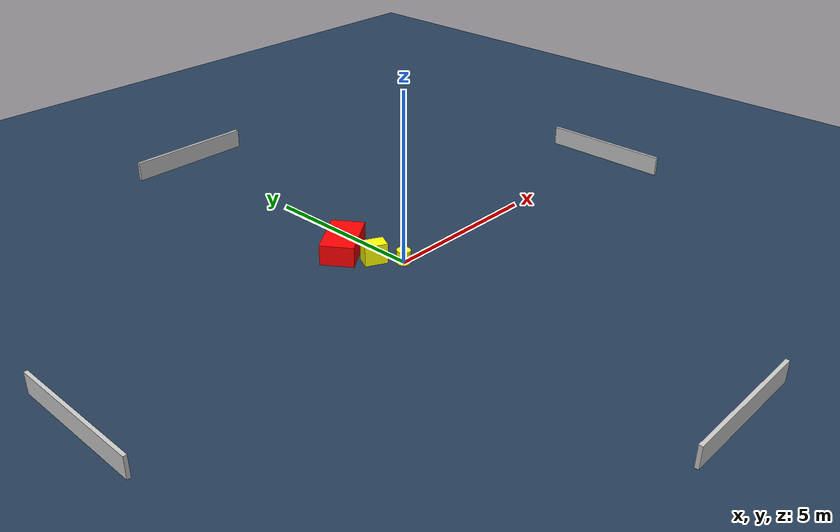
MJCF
<?xml version="1.0" ?>
<mujoco model="generated_environment">
  <option timestep="0.01" integrator="RK4" cone="elliptic"/>
  <default>
    <geom density="1"/>
  </default>
  <asset>
    <texture builtin="gradient" height="3072" name="skybox" rgb1="0.3 0.5 0.7" rgb2="0 0 0" type="skybox" width="512"/>
    <texture builtin="checker" height="300" name="groundplane" rgb1="0.2 0.3 0.4" rgb2="0.1 0.2 0.3" type="2d" width="300"/>
    <material name="groundplane" reflectance="0.2" texrepeat="5 5" texture="groundplane"/>
  </asset>
  <worldbody>
    <light dir="0 0 -1" directional="true" pos="0 0 1.5"/>
    <geom condim="3" friction="0.5 0.005 0.001" material="groundplane" name="floor" pos="0 0 0" size="0 0 0.05" type="plane"/>
    <body name="walls">
      <geom name="wall_1" condim="4" pos="-10.0 0.0 0.3" rgba="0.800000011920929 0.800000011920929 0.800000011920929 1.0" size="0.05 2.0 0.3" type="box"/>
      <geom name="wall_2" condim="4" pos="10.0 0.0 0.3" rgba="0.800000011920929 0.800000011920929 0.800000011920929 1.0" size="0.05 2.0 0.3" type="box"/>
      <geom name="wall_3" condim="4" pos="0.0 -10.0 0.3" rgba="0.800000011920929 0.800000011920929 0.800000011920929 1.0" size="2.0 0.05 0.3" type="box"/>
      <geom name="wall_4" condim="4" pos="0.0 10.0 0.3" rgba="0.800000011920929 0.800000011920929 0.800000011920929 1.0" size="2.0 0.05 0.3" type="box"/>
    </body>
    <body name="robot">
      <joint name="joint_x" type="slide" pos="0 0 0" axis="1 0 0"/>
      <joint name="joint_y" type="slide" pos="0 0 0" axis="0 1 0"/>
      <geom name="robot" type="cylinder" pos="0.0 0.0 0.2" size="0.2 0.2 0.0" mass="5.0" friction="1.0 0.005 0.0001" condim="4" rgba="1.0 1.0 0.0 1.0"/>
    </body>
    <body name="obstacle_1_movable">
      <geom name="obstacle_1_movable" condim="4" pos="-0.5146719038483215 0.6448321906569431 0.3" euler="0 0 333.3123372861687" friction="0.0 0.005 0.001" rgba="1.0 1.0 0.0 1.0" size="0.33360242012193386 0.22235929762496262 0.3" type="box" mass="0.1"/>
      <joint type="free"/>
    </body>
    <body name="obstacle_2_static">
      <geom name="obstacle_2_static" condim="4" pos="-0.770938321146022 1.6396150748126517 0.3" euler="0 0 214.51363897760794" friction="0.0 0.005 0.001" rgba="1.0 0.0 0.0 1.0" size="0.7898070881882144 0.48997853484463655 0.3" type="box"/>
    </body>
  </worldbody>
  <actuator>
    <motor name="actuator_x" joint="joint_x" gear="1" ctrlrange="-1 1"/>
    <motor name="actuator_y" joint="joint_y" gear="1" ctrlrange="-1 1"/>
  </actuator>
</mujoco>
